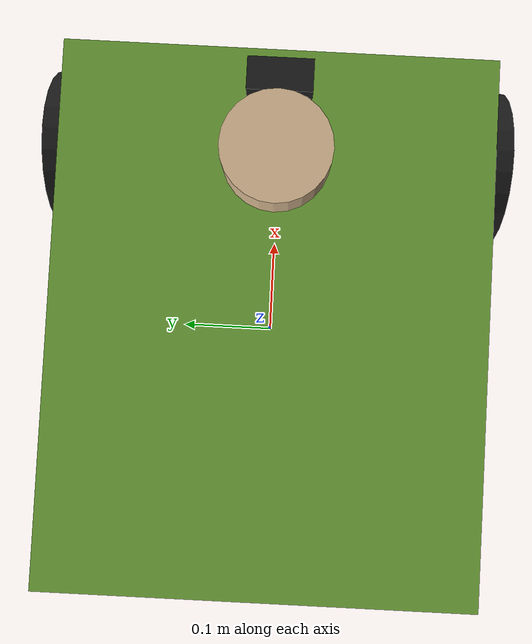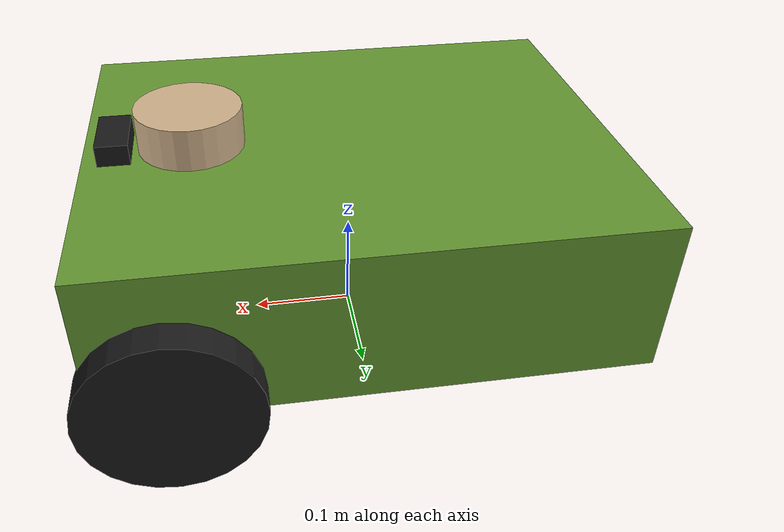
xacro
<?xml version="1.0"?>
<robot name="wayfinder" xmlns:xacro="https://wiki.ros.org/xacro">

    <xacro:include filename="$(find wayfinder_description)/urdf/wheel.xacro"/>

    <material name="green"><color rgba="0.4 0.6 0.2 1.0"/></material>
    <material name="black"><color rgba="0.1 0.1 0.1 1.0"/></material>
    <material name="brown"><color rgba="0.82 0.70 0.55 1.0"/></material>

    <link name="base_footprint"/>

    <link name="base_link">
        <visual>
            <geometry><box size="0.5 0.4 0.15"/></geometry>
            <material name="green"/>
        </visual>

        <collision>
            <geometry><box size="0.5 0.4 0.15"/></geometry>
        </collision>

        <inertial>
            <origin xyz="0 0 0" rpy="0 0 0"/>
            <mass value="3.0"/>
            <inertia ixx="0.045625" iyy="0.068125" izz="0.1025" ixy="0" ixz="0" iyz="0"/>
        </inertial>
    </link>

    <joint name="base_footprint_joint" type="fixed">
        <parent link="base_footprint"/>
        <child link="base_link"/>
        <origin xyz="0 0 0.13" rpy="0 0 0"/>
    </joint>

    <xacro:wheel prefix="front_left"  x_offset="0.18"  y_offset="0.21"/>
    <xacro:wheel prefix="front_right" x_offset="0.18"  y_offset="-0.21"/>

    <link name="caster_wheel_link">
        <visual>
            <geometry>
                <sphere radius="0.04"/>
            </geometry>
            <material name="black"/>
        </visual>
        <collision>
            <geometry>
                <sphere radius="0.04"/>
            </geometry>
        </collision>
        <inertial>
            <origin xyz="0 0 0" rpy="0 0 0"/>
            <mass value="0.1"/>
            <inertia ixx="0.000064" iyy="0.000064" izz="0.000064" ixy="0" ixz="0" iyz="0"/>
        </inertial>
    </link>

    <joint name="caster_wheel_joint" type="fixed">
        <parent link="base_link"/>
        <child link="caster_wheel_link"/>
        <origin xyz="-0.18 0 -0.09" rpy="0 0 0"/>
    </joint>

    <gazebo reference="caster_wheel_link">
        <mu1>0.0</mu1>
        <mu2>0.0</mu2>
    </gazebo>

    <xacro:include filename="$(find wayfinder_description)/urdf/sensors.xacro"/>
    <xacro:include filename="$(find wayfinder_description)/urdf/ros2_control.xacro"/>

</robot>

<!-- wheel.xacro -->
<robot xmlns:xacro="https://www.ros.org/wiki/xacro">

    <xacro:property name="wheel_radius" value="0.08"/>
    <xacro:property name="wheel_length" value="0.04"/>

    <xacro:macro name="wheel" params="prefix x_offset y_offset">
        <link name="${prefix}_wheel_link">
            <visual>
                <geometry><cylinder radius="${wheel_radius}" length="${wheel_length}"/></geometry>
                <material name="black"/>
            </visual>

            <collision>
                <geometry><cylinder radius="${wheel_radius}" length="${wheel_length}"/></geometry>
            </collision>

            <inertial>
                <origin xyz="0 0 0" rpy="0 0 0"/>
                <mass value="0.2"/>
                <inertia ixx="0.00035" iyy="0.00035" izz="0.00064" ixy="0" ixz="0" iyz="0"/>
            </inertial>
        </link>

        <joint name="${prefix}_wheel_joint" type="continuous">
            <parent link="base_link"/>
            <child link="${prefix}_wheel_link"/>
            <origin xyz="${x_offset} ${y_offset} -0.05" rpy="1.5708 0 0"/>
            <axis xyz="0 0 -1"/>
        </joint>
    </xacro:macro>
</robot>

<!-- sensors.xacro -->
<robot xmlns:xacro="http://www.ros.org/wiki/xacro">

    <link name="lidar_link">
        <visual>
            <geometry><cylinder radius="0.05" length="0.04"/></geometry>
            <material name="brown"/>
        </visual>

        <collision>
            <geometry><cylinder radius="0.05" length="0.04"/></geometry>
        </collision>

        <inertial>
            <origin xyz="0 0 0" rpy="0 0 0"/>
            <mass value="0.1"/>
            <inertia ixx="0.0001" iyy="0.0001" izz="0.000125" ixy="0" ixz="0" iyz="0"/>
        </inertial>
    </link>

    <joint name="lidar_joint" type="fixed">
        <parent link="base_link"/>
        <child link="lidar_link"/>
        <origin xyz="0.15 0 0.095" rpy="0 0 0"/>
    </joint>

    <gazebo reference="lidar_link">
        <sensor name="lidar_sensor" type="gpu_lidar">
            <update_rate>10</update_rate>
            <topic>scan</topic>
            <frame_id>lidar_link</frame_id>
            <gz_frame_id>lidar_link</gz_frame_id>
            <visualize>true</visualize>

            <lidar>
                <scan>
                    <horizontal>
                        <samples>360</samples>
                        <resolution>1</resolution>
                        <min_angle>-3.14159</min_angle>
                        <max_angle>3.14159</max_angle>
                    </horizontal>
                </scan>

                <range>
                    <min>0.52</min>
                    <max>12.0</max>
                    <resolution>0.01</resolution>
                </range>
            </lidar>
        </sensor>
    </gazebo>

    <link name="camera_link">
        <visual>
            <geometry><box size="0.03 0.06 0.03"/></geometry>
            <material name="black"/>
        </visual>

        <collision>
            <geometry><box size="0.03 0.06 0.03"/></geometry>
        </collision>

        <inertial>
            <origin xyz="0 0 0" rpy="0 0 0"/>
            <mass value="0.05"/>
            <inertia ixx="0.00002" iyy="0.00001" izz="0.00002" ixy="0" ixz="0" iyz="0"/>
        </inertial>
    </link>

    <joint name="camera_joint" type="fixed">
        <parent link="base_link"/>
        <child link="camera_link"/>
        <origin xyz="0.22 0 0.08" rpy="0 0 0"/>
    </joint>

    <gazebo reference="camera_link">
        <sensor name="camera_sensor" type="camera">
            <update_rate>15</update_rate>
            <topic>camera/image_raw</topic>
            <gz_frame_id>camera_link</gz_frame_id>
            <visualize>true</visualize>
            <camera>
                <horizontal_fov>1.3</horizontal_fov>
                <image>
                    <width>640</width>
                    <height>480</height>
                    <format>R8G8B8</format>
                </image>
                <clip>
                    <near>0.05</near>
                    <far>20.0</far>
                </clip>
            </camera>
        </sensor>
    </gazebo>

 </robot>
